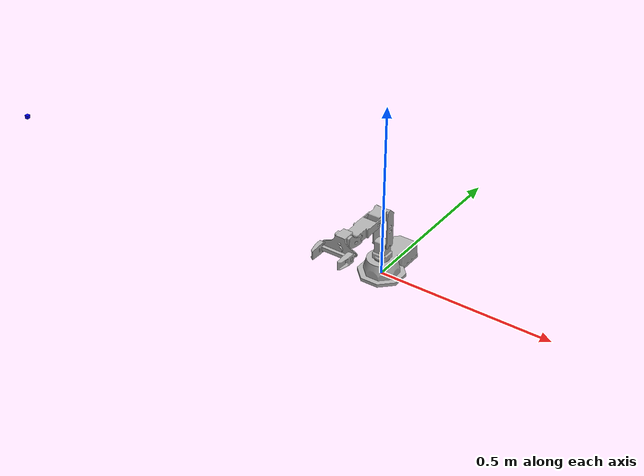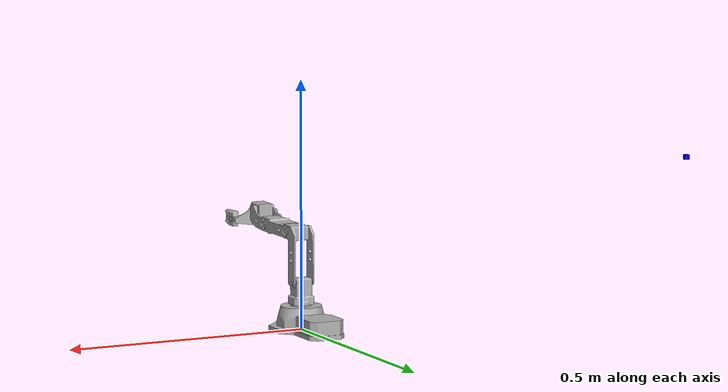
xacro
<?xml version="1.0" ?>
<robot name="PXA-100" xmlns:xacro="http://www.ros.org/wiki/xacro">

<xacro:include filename="$(find PXA-100_description)/urdf/materials.xacro" />
<xacro:include filename="$(find PXA-100_description)/urdf/PXA-100.trans" />
<xacro:include filename="$(find PXA-100_description)/urdf/PXA-100.gazebo" />
<link name="base_link">
  <inertial>
    <origin xyz="-0.00033268001955237986 0.031666793376025244 0.02046261261816924" rpy="0 0 0"/>
    <mass value="4.439916826797788"/>
    <inertia ixx="0.011384" iyy="0.003275" izz="0.013057" ixy="-1.3e-05" iyz="0.000269" ixz="-2e-06"/>
  </inertial>
  <visual>
    <origin xyz="0 0 0" rpy="0 0 0"/>
    <geometry>
      <mesh filename="package://PXA-100_description/meshes/base_link.stl" scale="0.001 0.001 0.001"/>
    </geometry>
    <material name="silver"/>
  </visual>
  <collision>
    <origin xyz="0 0 0" rpy="0 0 0"/>
    <geometry>
      <mesh filename="package://PXA-100_description/meshes/base_link.stl" scale="0.001 0.001 0.001"/>
    </geometry>
  </collision>
</link>

<link name="PX100_SRG_v3_1_1">
  <inertial>
    <origin xyz="-0.019000264282445372 -0.05234299910074103 0.009311512215089163" rpy="0 0 0"/>
    <mass value="0.6301273298082232"/>
    <inertia ixx="0.000307" iyy="0.000279" izz="0.000391" ixy="-0.0" iyz="-3e-05" ixz="0.0"/>
  </inertial>
  <visual>
    <origin xyz="-0.018504 0.135244 -0.192547" rpy="0 0 0"/>
    <geometry>
      <mesh filename="package://PXA-100_description/meshes/PX100_SRG_v3_1_1.stl" scale="0.001 0.001 0.001"/>
    </geometry>
    <material name="silver"/>
  </visual>
  <collision>
    <origin xyz="-0.018504 0.135244 -0.192547" rpy="0 0 0"/>
    <geometry>
      <mesh filename="package://PXA-100_description/meshes/PX100_SRG_v3_1_1.stl" scale="0.001 0.001 0.001"/>
    </geometry>
  </collision>
</link>

<link name="SRG_Carriage_With_Finger_v3_1_1">
  <inertial>
    <origin xyz="-0.008162134589460593 -0.012920435536582398 4.170328478381169e-07" rpy="0 0 0"/>
    <mass value="0.09723006086411787"/>
    <inertia ixx="2.8e-05" iyy="9e-06" izz="2.1e-05" ixy="-2e-06" iyz="-0.0" ixz="0.0"/>
  </inertial>
  <visual>
    <origin xyz="-0.049502 0.221244 -0.192548" rpy="0 0 0"/>
    <geometry>
      <mesh filename="package://PXA-100_description/meshes/SRG_Carriage_With_Finger_v3_1_1.stl" scale="0.001 0.001 0.001"/>
    </geometry>
    <material name="silver"/>
  </visual>
  <collision>
    <origin xyz="-0.049502 0.221244 -0.192548" rpy="0 0 0"/>
    <geometry>
      <mesh filename="package://PXA-100_description/meshes/SRG_Carriage_With_Finger_v3_1_1.stl" scale="0.001 0.001 0.001"/>
    </geometry>
  </collision>
</link>

<link name="SRG_Carriage_With_Finger_v3_2_1">
  <inertial>
    <origin xyz="0.008162071336713213 -0.012920435494593985 3.3716024680496837e-07" rpy="0 0 0"/>
    <mass value="0.09723006118130129"/>
    <inertia ixx="2.8e-05" iyy="9e-06" izz="2.1e-05" ixy="2e-06" iyz="0.0" ixz="0.0"/>
  </inertial>
  <visual>
    <origin xyz="0.050498 0.221244 -0.192548" rpy="0 0 0"/>
    <geometry>
      <mesh filename="package://PXA-100_description/meshes/SRG_Carriage_With_Finger_v3_2_1.stl" scale="0.001 0.001 0.001"/>
    </geometry>
    <material name="silver"/>
  </visual>
  <collision>
    <origin xyz="0.050498 0.221244 -0.192548" rpy="0 0 0"/>
    <geometry>
      <mesh filename="package://PXA-100_description/meshes/SRG_Carriage_With_Finger_v3_2_1.stl" scale="0.001 0.001 0.001"/>
    </geometry>
  </collision>
</link>

<link name="PX-100_Shoulder_v3_1_1">
  <inertial>
    <origin xyz="-2.811853144598286e-07 4.388481365878553e-07 0.026601904065175305" rpy="0 0 0"/>
    <mass value="0.4905451466770211"/>
    <inertia ixx="0.000162" iyy="0.000178" izz="0.0001" ixy="0.0" iyz="-0.0" ixz="-0.0"/>
  </inertial>
  <visual>
    <origin xyz="0.000496 0.000244 -0.048097" rpy="0 0 0"/>
    <geometry>
      <mesh filename="package://PXA-100_description/meshes/PX-100_Shoulder_v3_1_1.stl" scale="0.001 0.001 0.001"/>
    </geometry>
    <material name="silver"/>
  </visual>
  <collision>
    <origin xyz="0.000496 0.000244 -0.048097" rpy="0 0 0"/>
    <geometry>
      <mesh filename="package://PXA-100_description/meshes/PX-100_Shoulder_v3_1_1.stl" scale="0.001 0.001 0.001"/>
    </geometry>
  </collision>
</link>

<link name="SIMPLIFIED_-_PXA-100-UA_v4_1_1">
  <inertial>
    <origin xyz="0.018999718814712328 -0.01210979703858803 0.08495537669956192" rpy="0 0 0"/>
    <mass value="0.41973563736332853"/>
    <inertia ixx="0.000443" iyy="0.000448" izz="0.000181" ixy="0.0" iyz="7.7e-05" ixz="-0.0"/>
  </inertial>
  <visual>
    <origin xyz="0.019496 0.000244 -0.092547" rpy="0 0 0"/>
    <geometry>
      <mesh filename="package://PXA-100_description/meshes/SIMPLIFIED_-_PXA-100-UA_v4_1_1.stl" scale="0.001 0.001 0.001"/>
    </geometry>
    <material name="silver"/>
  </visual>
  <collision>
    <origin xyz="0.019496 0.000244 -0.092547" rpy="0 0 0"/>
    <geometry>
      <mesh filename="package://PXA-100_description/meshes/SIMPLIFIED_-_PXA-100-UA_v4_1_1.stl" scale="0.001 0.001 0.001"/>
    </geometry>
  </collision>
</link>

<link name="Fore_-_1_-_PX-100_v2_1_1">
  <inertial>
    <origin xyz="-0.019000280988398795 -0.06831678506176855 -2.157577554118273e-07" rpy="0 0 0"/>
    <mass value="0.6755278835789408"/>
    <inertia ixx="0.00048" iyy="0.000135" izz="0.000541" ixy="-0.0" iyz="0.0" ixz="-0.0"/>
  </inertial>
  <visual>
    <origin xyz="-0.018504 0.035244 -0.192547" rpy="0 0 0"/>
    <geometry>
      <mesh filename="package://PXA-100_description/meshes/Fore_-_1_-_PX-100_v2_1_1.stl" scale="0.001 0.001 0.001"/>
    </geometry>
    <material name="silver"/>
  </visual>
  <collision>
    <origin xyz="-0.018504 0.035244 -0.192547" rpy="0 0 0"/>
    <geometry>
      <mesh filename="package://PXA-100_description/meshes/Fore_-_1_-_PX-100_v2_1_1.stl" scale="0.001 0.001 0.001"/>
    </geometry>
  </collision>
</link>

<link name="end">
  <visual>
    <origin xyz="-1.0 0 0.05" rpy="0 0 0"/>
    <geometry>
      <box size="0.01 0.01 0.01"/>  <!-- x, y, z size in meters -->
    </geometry>
    <material name="blue">
      <color rgba="0 0 1 1"/>
    </material>
  </visual>
  <collision>
    <origin xyz="-0.0 0 0.05" rpy="0 0 0"/>
    <geometry>
      <box size="0.01 0.01 0.01"/>
    </geometry>
  </collision>
  <inertial>
    <origin xyz="0 0 0.05" rpy="0 0 0"/>
    <mass value="1.0"/>
    <inertia ixx="0.001" ixy="0.0" ixz="0.0"
             iyy="0.001" iyz="0.0"
             izz="0.001"/>
  </inertial>
</link>

<joint name="Revolute 15" type="continuous">
  <origin xyz="0.0 -0.1 0.0" rpy="0 0 0"/>
  <parent link="Fore_-_1_-_PX-100_v2_1_1"/>
  <child link="PX100_SRG_v3_1_1"/>
  <axis xyz="1.0 -0.0 0.0"/>
</joint>

<joint name="box_joint" type="fixed">
  <parent link="PX100_SRG_v3_1_1"/> <!-- ya jis link se jodna hai -->
  <child link="end"/>
  <origin xyz="-0.02 -0.1 0" rpy="0 0 0"/>
</joint>

<joint name="Slider 16" type="prismatic">
  <origin xyz="0.030998 -0.086 1e-06" rpy="0 0 0"/>
  <parent link="PX100_SRG_v3_1_1"/>
  <child link="SRG_Carriage_With_Finger_v3_1_1"/>
  <axis xyz="1.0 -0.0 1e-06"/>
  <limit upper="0.0" lower="0.0" effort="100" velocity="100"/>
</joint>

<joint name="Slider 17" type="prismatic">
  <origin xyz="-0.069002 -0.086 1e-06" rpy="0 0 0"/>
  <parent link="PX100_SRG_v3_1_1"/>
  <child link="SRG_Carriage_With_Finger_v3_2_1"/>
  <axis xyz="-1.0 0.0 -1e-06"/>
  <limit upper="0.0" lower="0.0" effort="100" velocity="100"/>
</joint>

<joint name="Revolute 18" type="continuous">
  <origin xyz="-0.000496 -0.000244 0.048097" rpy="0 0 0"/>
  <parent link="base_link"/>
  <child link="PX-100_Shoulder_v3_1_1"/>
  <axis xyz="-0.0 -0.0 1.0"/>
</joint>

<joint name="Revolute 19" type="continuous">
  <origin xyz="-0.019 0.0 0.04445" rpy="0 0 0"/>
  <parent link="PX-100_Shoulder_v3_1_1"/>
  <child link="SIMPLIFIED_-_PXA-100-UA_v4_1_1"/>
  <axis xyz="-1.0 0.0 -0.0"/>
</joint>

<joint name="Revolute 20" type="continuous">
  <origin xyz="0.038 -0.035 0.1" rpy="0 0 0"/>
  <parent link="SIMPLIFIED_-_PXA-100-UA_v4_1_1"/>
  <child link="Fore_-_1_-_PX-100_v2_1_1"/>
  <axis xyz="1.0 -0.0 0.0"/>
</joint>

</robot>

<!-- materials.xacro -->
<robot name="PXA-100" xmlns:xacro="http://www.ros.org/wiki/xacro" >

<material name="silver">
  <color rgba="0.700 0.700 0.700 1.000"/>
</material>

</robot>

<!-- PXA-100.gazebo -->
<robot name="PXA-100" xmlns:xacro="http://www.ros.org/wiki/xacro" >

<xacro:property name="body_color" value="Gazebo/Silver" />

<gazebo>
  <plugin name="control" filename="libgazebo_ros_control.so"/>
</gazebo>
<gazebo reference="base_link">
  <material>${body_color}</material>
  <mu1>0.2</mu1>
  <mu2>0.2</mu2>
  <self_collide>true</self_collide>
  <gravity>true</gravity>
</gazebo>

<gazebo reference="PX100_SRG_v3_1_1">
  <material>${body_color}</material>
  <mu1>0.2</mu1>
  <mu2>0.2</mu2>
  <self_collide>true</self_collide>
</gazebo>

<gazebo reference="SRG_Carriage_With_Finger_v3_1_1">
  <material>${body_color}</material>
  <mu1>0.2</mu1>
  <mu2>0.2</mu2>
  <self_collide>true</self_collide>
</gazebo>

<gazebo reference="SRG_Carriage_With_Finger_v3_2_1">
  <material>${body_color}</material>
  <mu1>0.2</mu1>
  <mu2>0.2</mu2>
  <self_collide>true</self_collide>
</gazebo>

<gazebo reference="PX-100_Shoulder_v3_1_1">
  <material>${body_color}</material>
  <mu1>0.2</mu1>
  <mu2>0.2</mu2>
  <self_collide>true</self_collide>
</gazebo>

<gazebo reference="SIMPLIFIED_-_PXA-100-UA_v4_1_1">
  <material>${body_color}</material>
  <mu1>0.2</mu1>
  <mu2>0.2</mu2>
  <self_collide>true</self_collide>
</gazebo>

<gazebo reference="Fore_-_1_-_PX-100_v2_1_1">
  <material>${body_color}</material>
  <mu1>0.2</mu1>
  <mu2>0.2</mu2>
  <self_collide>true</self_collide>
</gazebo>

</robot>
